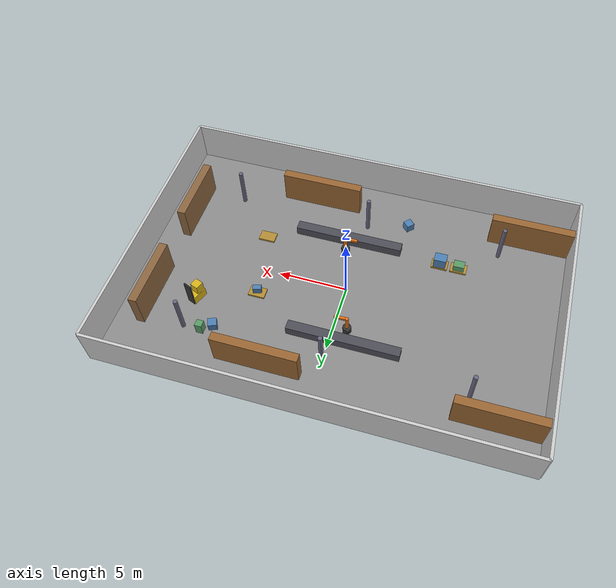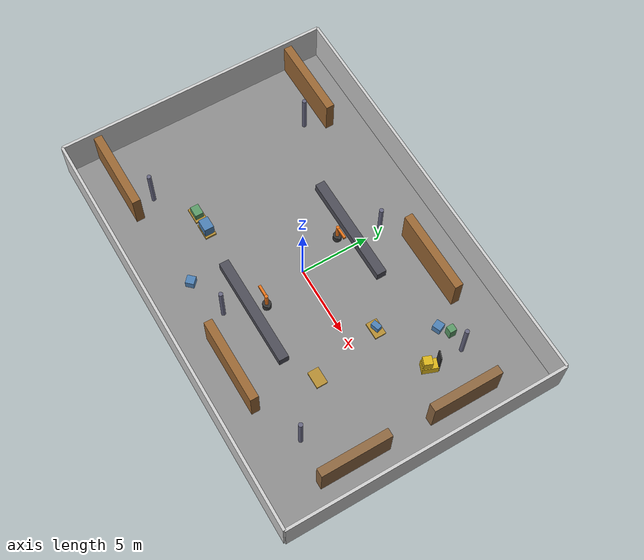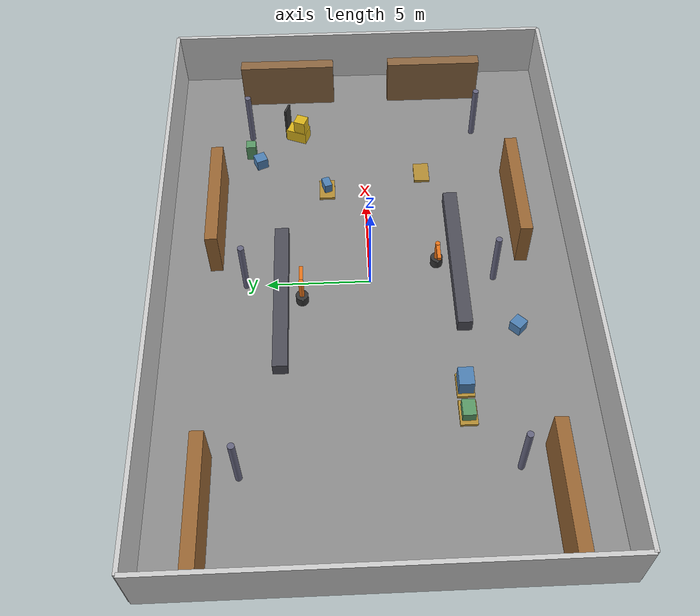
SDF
<?xml version="1.0" ?>
<sdf version="1.8">
  <world name="industrial">

    <!-- ===== Physics ===== -->
    <physics name="1ms" type="ignored">
      <max_step_size>0.001</max_step_size>
      <real_time_factor>1.0</real_time_factor>
      <real_time_update_rate>1000</real_time_update_rate>
    </physics>

    <!-- ===== Required plugins ===== -->
    <plugin filename="libgz-sim-physics-system.so"
            name="gz::sim::systems::Physics"/>
    <plugin filename="libgz-sim-user-commands-system.so"
            name="gz::sim::systems::UserCommands"/>
    <plugin filename="libgz-sim-scene-broadcaster-system.so"
            name="gz::sim::systems::SceneBroadcaster"/>
    <plugin filename="libgz-sim-sensors-system.so"
            name="gz::sim::systems::Sensors">
      <render_engine>ogre2</render_engine>
    </plugin>
    <plugin filename="libgz-sim-imu-system.so"
            name="gz::sim::systems::Imu"/>
    <plugin filename="libgz-sim-contact-system.so"
            name="gz::sim::systems::Contact"/>

    <!-- ===== Scene lighting ===== -->
    <scene>
      <ambient>0.4 0.4 0.4 1</ambient>
      <background>0.7 0.7 0.7 1</background>
    </scene>

    <light type="directional" name="sun">
      <cast_shadows>true</cast_shadows>
      <pose>0 0 10 0 0 0</pose>
      <diffuse>0.8 0.8 0.8 1</diffuse>
      <specular>0.2 0.2 0.2 1</specular>
      <direction>-0.5 0.1 -0.9</direction>
    </light>

    <!-- ===== Floor (20 x 30 m concrete) ===== -->
    <model name="floor">
      <static>true</static>
      <link name="floor_link">
        <collision name="collision">
          <geometry><box><size>30 20 0.1</size></box></geometry>
        </collision>
        <visual name="visual">
          <geometry><box><size>30 20 0.1</size></box></geometry>
          <material>
            <ambient>0.55 0.55 0.55 1</ambient>
            <diffuse>0.55 0.55 0.55 1</diffuse>
          </material>
        </visual>
      </link>
      <pose>0 0 -0.05 0 0 0</pose>
    </model>

    <!-- ===== Perimeter walls ===== -->
    <!-- North wall (y = +10) -->
    <model name="wall_north">
      <static>true</static>
      <pose>0 10 1.5 0 0 0</pose>
      <link name="link">
        <collision name="collision"><geometry><box><size>30 0.2 3</size></box></geometry></collision>
        <visual name="visual">
          <geometry><box><size>30 0.2 3</size></box></geometry>
          <material><ambient>0.8 0.8 0.8 1</ambient><diffuse>0.8 0.8 0.8 1</diffuse></material>
        </visual>
      </link>
    </model>

    <!-- South wall (y = -10) -->
    <model name="wall_south">
      <static>true</static>
      <pose>0 -10 1.5 0 0 0</pose>
      <link name="link">
        <collision name="collision"><geometry><box><size>30 0.2 3</size></box></geometry></collision>
        <visual name="visual">
          <geometry><box><size>30 0.2 3</size></box></geometry>
          <material><ambient>0.8 0.8 0.8 1</ambient><diffuse>0.8 0.8 0.8 1</diffuse></material>
        </visual>
      </link>
    </model>

    <!-- East wall (x = +15) -->
    <model name="wall_east">
      <static>true</static>
      <pose>15 0 1.5 0 0 0</pose>
      <link name="link">
        <collision name="collision"><geometry><box><size>0.2 20 3</size></box></geometry></collision>
        <visual name="visual">
          <geometry><box><size>0.2 20 3</size></box></geometry>
          <material><ambient>0.8 0.8 0.8 1</ambient><diffuse>0.8 0.8 0.8 1</diffuse></material>
        </visual>
      </link>
    </model>

    <!-- West wall (x = -15) -->
    <model name="wall_west">
      <static>true</static>
      <pose>-15 0 1.5 0 0 0</pose>
      <link name="link">
        <collision name="collision"><geometry><box><size>0.2 20 3</size></box></geometry></collision>
        <visual name="visual">
          <geometry><box><size>0.2 20 3</size></box></geometry>
          <material><ambient>0.8 0.8 0.8 1</ambient><diffuse>0.8 0.8 0.8 1</diffuse></material>
        </visual>
      </link>
    </model>

    <!-- ===== Steel columns (6) ===== -->
    <model name="column_1"><static>true</static><pose>-10  6 1.5 0 0 0</pose>
      <link name="link">
        <collision name="c"><geometry><cylinder><radius>0.15</radius><length>3.0</length></cylinder></geometry></collision>
        <visual name="v"><geometry><cylinder><radius>0.15</radius><length>3.0</length></cylinder></geometry>
          <material><ambient>0.4 0.4 0.5 1</ambient><diffuse>0.4 0.4 0.5 1</diffuse></material></visual>
      </link>
    </model>
    <model name="column_2"><static>true</static><pose>-10 -6 1.5 0 0 0</pose>
      <link name="link">
        <collision name="c"><geometry><cylinder><radius>0.15</radius><length>3.0</length></cylinder></geometry></collision>
        <visual name="v"><geometry><cylinder><radius>0.15</radius><length>3.0</length></cylinder></geometry>
          <material><ambient>0.4 0.4 0.5 1</ambient><diffuse>0.4 0.4 0.5 1</diffuse></material></visual>
      </link>
    </model>
    <model name="column_3"><static>true</static><pose>0  6 1.5 0 0 0</pose>
      <link name="link">
        <collision name="c"><geometry><cylinder><radius>0.15</radius><length>3.0</length></cylinder></geometry></collision>
        <visual name="v"><geometry><cylinder><radius>0.15</radius><length>3.0</length></cylinder></geometry>
          <material><ambient>0.4 0.4 0.5 1</ambient><diffuse>0.4 0.4 0.5 1</diffuse></material></visual>
      </link>
    </model>
    <model name="column_4"><static>true</static><pose>0 -6 1.5 0 0 0</pose>
      <link name="link">
        <collision name="c"><geometry><cylinder><radius>0.15</radius><length>3.0</length></cylinder></geometry></collision>
        <visual name="v"><geometry><cylinder><radius>0.15</radius><length>3.0</length></cylinder></geometry>
          <material><ambient>0.4 0.4 0.5 1</ambient><diffuse>0.4 0.4 0.5 1</diffuse></material></visual>
      </link>
    </model>
    <model name="column_5"><static>true</static><pose>10  6 1.5 0 0 0</pose>
      <link name="link">
        <collision name="c"><geometry><cylinder><radius>0.15</radius><length>3.0</length></cylinder></geometry></collision>
        <visual name="v"><geometry><cylinder><radius>0.15</radius><length>3.0</length></cylinder></geometry>
          <material><ambient>0.4 0.4 0.5 1</ambient><diffuse>0.4 0.4 0.5 1</diffuse></material></visual>
      </link>
    </model>
    <model name="column_6"><static>true</static><pose>10 -6 1.5 0 0 0</pose>
      <link name="link">
        <collision name="c"><geometry><cylinder><radius>0.15</radius><length>3.0</length></cylinder></geometry></collision>
        <visual name="v"><geometry><cylinder><radius>0.15</radius><length>3.0</length></cylinder></geometry>
          <material><ambient>0.4 0.4 0.5 1</ambient><diffuse>0.4 0.4 0.5 1</diffuse></material></visual>
      </link>
    </model>

    <!-- ===== Shelf racks (4 double-sided, each 6 x 0.6 x 2.5 m) ===== -->
    <!-- Rack 1 — along +y side, left -->
    <model name="rack_1"><static>true</static><pose>-12 7.5 1.25 0 0 0</pose>
      <link name="link">
        <collision name="c"><geometry><box><size>6 0.6 2.5</size></box></geometry></collision>
        <visual name="v"><geometry><box><size>6 0.6 2.5</size></box></geometry>
          <material><ambient>0.6 0.4 0.2 1</ambient><diffuse>0.6 0.4 0.2 1</diffuse></material></visual>
      </link>
    </model>
    <!-- Rack 2 — along +y side, right -->
    <model name="rack_2"><static>true</static><pose>4 7.5 1.25 0 0 0</pose>
      <link name="link">
        <collision name="c"><geometry><box><size>6 0.6 2.5</size></box></geometry></collision>
        <visual name="v"><geometry><box><size>6 0.6 2.5</size></box></geometry>
          <material><ambient>0.6 0.4 0.2 1</ambient><diffuse>0.6 0.4 0.2 1</diffuse></material></visual>
      </link>
    </model>
    <!-- Rack 3 — along -y side, left -->
    <model name="rack_3"><static>true</static><pose>-12 -7.5 1.25 0 0 0</pose>
      <link name="link">
        <collision name="c"><geometry><box><size>6 0.6 2.5</size></box></geometry></collision>
        <visual name="v"><geometry><box><size>6 0.6 2.5</size></box></geometry>
          <material><ambient>0.6 0.4 0.2 1</ambient><diffuse>0.6 0.4 0.2 1</diffuse></material></visual>
      </link>
    </model>
    <!-- Rack 4 — along -y side, right -->
    <model name="rack_4"><static>true</static><pose>4 -7.5 1.25 0 0 0</pose>
      <link name="link">
        <collision name="c"><geometry><box><size>6 0.6 2.5</size></box></geometry></collision>
        <visual name="v"><geometry><box><size>6 0.6 2.5</size></box></geometry>
          <material><ambient>0.6 0.4 0.2 1</ambient><diffuse>0.6 0.4 0.2 1</diffuse></material></visual>
      </link>
    </model>

    <!-- ===== A couple of pallets / boxes as extra clutter ===== -->
    <model name="pallet_1"><static>true</static><pose>6 2 0.075 0 0 0</pose>
      <link name="link">
        <collision name="c"><geometry><box><size>1.2 0.8 0.15</size></box></geometry></collision>
        <visual name="v"><geometry><box><size>1.2 0.8 0.15</size></box></geometry>
          <material><ambient>0.7 0.55 0.2 1</ambient><diffuse>0.7 0.55 0.2 1</diffuse></material></visual>
      </link>
    </model>
    <model name="box_on_pallet_1"><static>true</static><pose>6 2 0.475 0 0 0.3</pose>
      <link name="link">
        <collision name="c"><geometry><box><size>0.6 0.4 0.5</size></box></geometry></collision>
        <visual name="v"><geometry><box><size>0.6 0.4 0.5</size></box></geometry>
          <material><ambient>0.3 0.5 0.7 1</ambient><diffuse>0.3 0.5 0.7 1</diffuse></material></visual>
      </link>
    </model>
    <model name="pallet_2"><static>true</static><pose>7 -3 0.075 0 0 0</pose>
      <link name="link">
        <collision name="c"><geometry><box><size>1.2 0.8 0.15</size></box></geometry></collision>
        <visual name="v"><geometry><box><size>1.2 0.8 0.15</size></box></geometry>
          <material><ambient>0.7 0.55 0.2 1</ambient><diffuse>0.7 0.55 0.2 1</diffuse></material></visual>
      </link>
    </model>

    <!-- Extra industrial clutter. Central E-W lane (|y|<2.5) and the  -->
    <!-- spawn area (~-12,0) are kept clear for navigation.            -->

    <!-- ===== Assembly / conveyor lines (long low benches) ===== -->
    <model name="conveyor_north"><static>true</static><pose>-1 4.3 0.35 0 0 0</pose>
      <link name="link">
        <collision name="c"><geometry><box><size>8 0.7 0.7</size></box></geometry></collision>
        <visual name="v"><geometry><box><size>8 0.7 0.7</size></box></geometry>
          <material><ambient>0.30 0.30 0.34 1</ambient><diffuse>0.30 0.30 0.34 1</diffuse></material></visual>
      </link>
    </model>
    <model name="conveyor_south"><static>true</static><pose>1 -4.3 0.35 0 0 0</pose>
      <link name="link">
        <collision name="c"><geometry><box><size>8 0.7 0.7</size></box></geometry></collision>
        <visual name="v"><geometry><box><size>8 0.7 0.7</size></box></geometry>
          <material><ambient>0.30 0.30 0.34 1</ambient><diffuse>0.30 0.30 0.34 1</diffuse></material></visual>
      </link>
    </model>

    <!-- ===== Robotic-arm workcells (base + column + arm) ===== -->
    <model name="arm_cell_1"><static>true</static><pose>-1 3.3 0 0 0 0</pose>
      <link name="link">
        <collision name="base_c"><pose>0 0 0.25 0 0 0</pose><geometry><cylinder><radius>0.30</radius><length>0.5</length></cylinder></geometry></collision>
        <visual name="base_v"><pose>0 0 0.25 0 0 0</pose><geometry><cylinder><radius>0.30</radius><length>0.5</length></cylinder></geometry>
          <material><ambient>0.2 0.2 0.2 1</ambient><diffuse>0.2 0.2 0.2 1</diffuse></material></visual>
        <collision name="col_c"><pose>0 0 1.05 0 0 0</pose><geometry><cylinder><radius>0.12</radius><length>1.1</length></cylinder></geometry></collision>
        <visual name="col_v"><pose>0 0 1.05 0 0 0</pose><geometry><cylinder><radius>0.12</radius><length>1.1</length></cylinder></geometry>
          <material><ambient>0.9 0.45 0.1 1</ambient><diffuse>0.9 0.45 0.1 1</diffuse></material></visual>
        <collision name="arm_c"><pose>0.45 0 1.5 0 0 0</pose><geometry><box><size>0.9 0.18 0.18</size></box></geometry></collision>
        <visual name="arm_v"><pose>0.45 0 1.5 0 0 0</pose><geometry><box><size>0.9 0.18 0.18</size></box></geometry>
          <material><ambient>0.9 0.45 0.1 1</ambient><diffuse>0.9 0.45 0.1 1</diffuse></material></visual>
      </link>
    </model>
    <model name="arm_cell_2"><static>true</static><pose>1 -3.3 0 0 0 3.14159</pose>
      <link name="link">
        <collision name="base_c"><pose>0 0 0.25 0 0 0</pose><geometry><cylinder><radius>0.30</radius><length>0.5</length></cylinder></geometry></collision>
        <visual name="base_v"><pose>0 0 0.25 0 0 0</pose><geometry><cylinder><radius>0.30</radius><length>0.5</length></cylinder></geometry>
          <material><ambient>0.2 0.2 0.2 1</ambient><diffuse>0.2 0.2 0.2 1</diffuse></material></visual>
        <collision name="col_c"><pose>0 0 1.05 0 0 0</pose><geometry><cylinder><radius>0.12</radius><length>1.1</length></cylinder></geometry></collision>
        <visual name="col_v"><pose>0 0 1.05 0 0 0</pose><geometry><cylinder><radius>0.12</radius><length>1.1</length></cylinder></geometry>
          <material><ambient>0.9 0.45 0.1 1</ambient><diffuse>0.9 0.45 0.1 1</diffuse></material></visual>
        <collision name="arm_c"><pose>0.45 0 1.5 0 0 0</pose><geometry><box><size>0.9 0.18 0.18</size></box></geometry></collision>
        <visual name="arm_v"><pose>0.45 0 1.5 0 0 0</pose><geometry><box><size>0.9 0.18 0.18</size></box></geometry>
          <material><ambient>0.9 0.45 0.1 1</ambient><diffuse>0.9 0.45 0.1 1</diffuse></material></visual>
      </link>
    </model>

    <!-- ===== Extra shelving racks near the east wall (deep in y) ===== -->
    <model name="shelf_east_1"><static>true</static><pose>13 4 1.3 0 0 0</pose>
      <link name="link">
        <collision name="c"><geometry><box><size>0.6 5 2.6</size></box></geometry></collision>
        <visual name="v"><geometry><box><size>0.6 5 2.6</size></box></geometry>
          <material><ambient>0.55 0.4 0.25 1</ambient><diffuse>0.55 0.4 0.25 1</diffuse></material></visual>
      </link>
    </model>
    <model name="shelf_east_2"><static>true</static><pose>13 -4 1.3 0 0 0</pose>
      <link name="link">
        <collision name="c"><geometry><box><size>0.6 5 2.6</size></box></geometry></collision>
        <visual name="v"><geometry><box><size>0.6 5 2.6</size></box></geometry>
          <material><ambient>0.55 0.4 0.25 1</ambient><diffuse>0.55 0.4 0.25 1</diffuse></material></visual>
      </link>
    </model>

    <!-- ===== Pallet staging area (west-south), pallets + stacked boxes ===== -->
    <model name="pallet_3"><static>true</static><pose>-6 -4 0.075 0 0 0</pose>
      <link name="link">
        <collision name="c"><geometry><box><size>1.2 0.8 0.15</size></box></geometry></collision>
        <visual name="v"><geometry><box><size>1.2 0.8 0.15</size></box></geometry>
          <material><ambient>0.7 0.55 0.2 1</ambient><diffuse>0.7 0.55 0.2 1</diffuse></material></visual>
      </link>
    </model>
    <model name="cargo_3"><static>true</static><pose>-6 -4 0.55 0 0 0</pose>
      <link name="link">
        <collision name="c"><geometry><box><size>0.9 0.7 0.8</size></box></geometry></collision>
        <visual name="v"><geometry><box><size>0.9 0.7 0.8</size></box></geometry>
          <material><ambient>0.30 0.50 0.70 1</ambient><diffuse>0.30 0.50 0.70 1</diffuse></material></visual>
      </link>
    </model>
    <model name="pallet_4"><static>true</static><pose>-7.4 -4 0.075 0 0 0</pose>
      <link name="link">
        <collision name="c"><geometry><box><size>1.2 0.8 0.15</size></box></geometry></collision>
        <visual name="v"><geometry><box><size>1.2 0.8 0.15</size></box></geometry>
          <material><ambient>0.7 0.55 0.2 1</ambient><diffuse>0.7 0.55 0.2 1</diffuse></material></visual>
      </link>
    </model>
    <model name="cargo_4"><static>true</static><pose>-7.4 -4 0.40 0 0 0</pose>
      <link name="link">
        <collision name="c"><geometry><box><size>0.8 0.6 0.5</size></box></geometry></collision>
        <visual name="v"><geometry><box><size>0.8 0.6 0.5</size></box></geometry>
          <material><ambient>0.35 0.6 0.4 1</ambient><diffuse>0.35 0.6 0.4 1</diffuse></material></visual>
      </link>
    </model>

    <!-- ===== Scattered crates ===== -->
    <model name="crate_1"><static>true</static><pose>8 5.5 0.3 0 0 0.4</pose>
      <link name="link">
        <collision name="c"><geometry><box><size>0.6 0.6 0.6</size></box></geometry></collision>
        <visual name="v"><geometry><box><size>0.6 0.6 0.6</size></box></geometry>
          <material><ambient>0.30 0.50 0.70 1</ambient><diffuse>0.30 0.50 0.70 1</diffuse></material></visual>
      </link>
    </model>
    <model name="crate_2"><static>true</static><pose>8.7 6 0.45 0 0 0</pose>
      <link name="link">
        <collision name="c"><geometry><box><size>0.5 0.5 0.9</size></box></geometry></collision>
        <visual name="v"><geometry><box><size>0.5 0.5 0.9</size></box></geometry>
          <material><ambient>0.35 0.6 0.4 1</ambient><diffuse>0.35 0.6 0.4 1</diffuse></material></visual>
      </link>
    </model>
    <model name="crate_3"><static>true</static><pose>-3 -6.8 0.3 0 0 0.8</pose>
      <link name="link">
        <collision name="c"><geometry><box><size>0.6 0.6 0.6</size></box></geometry></collision>
        <visual name="v"><geometry><box><size>0.6 0.6 0.6</size></box></geometry>
          <material><ambient>0.30 0.50 0.70 1</ambient><diffuse>0.30 0.50 0.70 1</diffuse></material></visual>
      </link>
    </model>

    <!-- ===== Parked forklift (boxy approximation) ===== -->
    <model name="forklift"><static>true</static><pose>10 3.5 0 0 0 1.2</pose>
      <link name="link">
        <collision name="body_c"><pose>0 0 0.35 0 0 0</pose><geometry><box><size>1.1 0.7 0.7</size></box></geometry></collision>
        <visual name="body_v"><pose>0 0 0.35 0 0 0</pose><geometry><box><size>1.1 0.7 0.7</size></box></geometry>
          <material><ambient>0.85 0.7 0.1 1</ambient><diffuse>0.85 0.7 0.1 1</diffuse></material></visual>
        <collision name="cab_c"><pose>-0.2 0 1.05 0 0 0</pose><geometry><box><size>0.6 0.6 0.7</size></box></geometry></collision>
        <visual name="cab_v"><pose>-0.2 0 1.05 0 0 0</pose><geometry><box><size>0.6 0.6 0.7</size></box></geometry>
          <material><ambient>0.85 0.7 0.1 1</ambient><diffuse>0.85 0.7 0.1 1</diffuse></material></visual>
        <collision name="mast_c"><pose>0.55 0 1.0 0 0 0</pose><geometry><box><size>0.1 0.6 2.0</size></box></geometry></collision>
        <visual name="mast_v"><pose>0.55 0 1.0 0 0 0</pose><geometry><box><size>0.1 0.6 2.0</size></box></geometry>
          <material><ambient>0.2 0.2 0.2 1</ambient><diffuse>0.2 0.2 0.2 1</diffuse></material></visual>
      </link>
    </model>

  </world>
</sdf>
